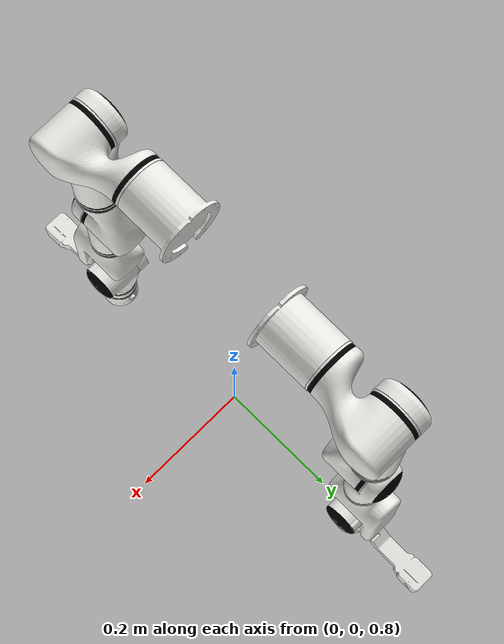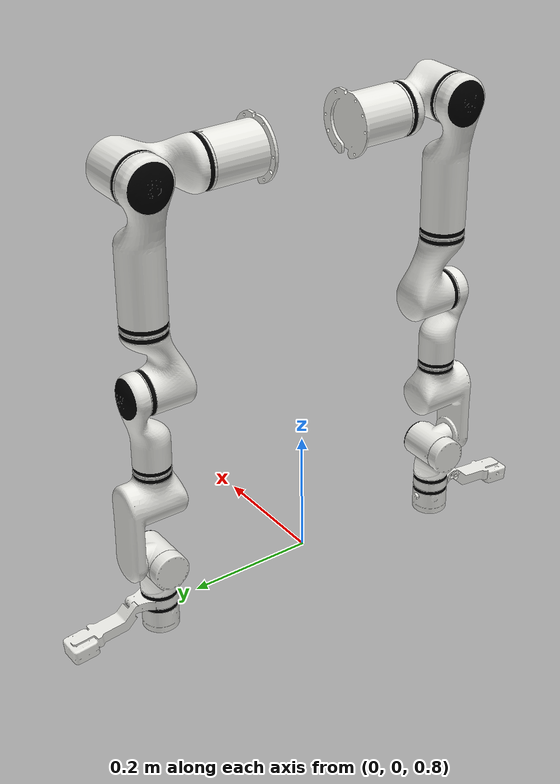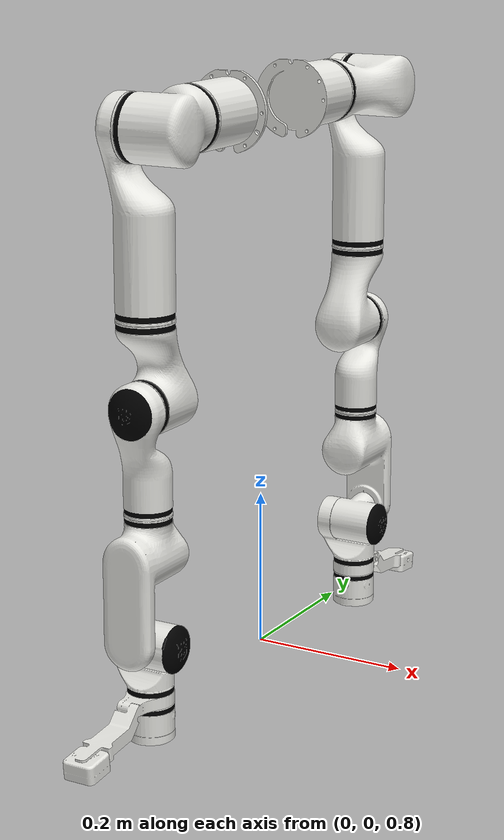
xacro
<?xml version='1.0' encoding='utf-8'?>
<robot name="rm_rx75_dual" xmlns:xacro="http://www.ros.org/wiki/xacro">
  <xacro:arg name="right_rpy" default="-1.5707963267949 -1.5707963267949 0" />
  <xacro:arg name="right_xyz" default="0 0.075 1.5" />
  <xacro:arg name="left_rpy" default="1.5707963267949 -1.5707963267949 0" />
  <xacro:arg name="left_xyz" default="0 -0.075 1.5" />
  <link name="base_root" />
  <joint name="left_base_mount" type="fixed">
    <origin rpy="$(arg left_rpy)" xyz="$(arg left_xyz)" />
    <parent link="base_root" />
    <child link="left_base_link" />
  </joint>
  <joint name="right_base_mount" type="fixed">
    <origin rpy="$(arg right_rpy)" xyz="$(arg right_xyz)" />
    <parent link="base_root" />
    <child link="right_base_link" />
  </joint>
  <link name="left_base_link">
    <inertial>
      <origin rpy="0 0 0" xyz="3.53515085052307E-05 -0.000344112995119898 0.0504743485121994" />
      <mass value="0.651913537431184" />
      <inertia ixx="0.000695985861740614" ixy="2.06881020271026E-06" ixz="2.11905962706535E-06" iyy="0.000681094463816854" iyz="-6.8398972367929E-06" izz="0.000727115124180861" />
    </inertial>
    <collision>
      <origin rpy="0 0 0" xyz="0 0 0" />
      <geometry>
        <mesh filename="package://rm_description/meshes/rm_rx75_arm/rm_rx75_left_arm_v/base_link.STL" />
      </geometry>
    </collision>
    <visual>
      <origin xyz="0 0 0" rpy="0 0 0" />
      <geometry>
        <mesh filename="package://rm_description/meshes/dae/rxl75/base_link.dae" />
      </geometry>
    </visual>
  </link>
  <link name="left_Link1">
    <inertial>
      <origin rpy="0 0 0" xyz="-0.488E-3 -13.727E-3 -10.765E-3" />
      <mass value="1.559" />
      <inertia ixx="2661.923E-6" ixy="-31.029E-6" ixz="9.34E-6" iyy="2302.513E-6" iyz="151.466E-6" izz="1676.59E-6" />
    </inertial>
    <collision>
      <origin rpy="0 0 0" xyz="0 0 0" />
      <geometry>
        <mesh filename="package://rm_description/meshes/rm_rx75_arm/rm_rx75_left_arm_v/Link1.STL" />
      </geometry>
    </collision>
    <visual>
      <origin xyz="0 0 0" rpy="0 0 0" />
      <geometry>
        <mesh filename="package://rm_description/meshes/dae/rxl75/Link1.dae" />
      </geometry>
    </visual>
  </link>
  <joint name="left_joint1" type="revolute">
    <origin rpy="0 0 0" xyz="0 0 0.191500058118611" />
    <parent link="left_base_link" />
    <child link="left_Link1" />
    <axis xyz="0 0 1" />
    <limit effort="60" lower="-3.0194" upper="3.0194" velocity="3.14" />
  </joint>
  <link name="left_Link2">
    <inertial>
      <origin rpy="0 0 0" xyz="-0.112E-3 -148.134E-3 4.111E-3" />
      <mass value="1.394" />
      <inertia ixx="6927.314E-6" ixy="0.302E-6" ixz="-2.679E-6" iyy="1045.02E-6" iyz="-801.141E-6" izz="6864.526E-6" />
    </inertial>
    <collision>
      <origin rpy="0 0 0" xyz="0 0 0" />
      <geometry>
        <mesh filename="package://rm_description/meshes/rm_rx75_arm/rm_rx75_left_arm_v/Link2.STL" />
      </geometry>
    </collision>
    <visual>
      <origin xyz="0 0 0" rpy="0 0 0" />
      <geometry>
        <mesh filename="package://rm_description/meshes/dae/rxl75/Link2.dae" />
      </geometry>
    </visual>
  </link>
  <joint name="left_joint2" type="revolute">
    <origin rpy="-1.57079632679489 -1.5707963267949 0" xyz="0 0 0" />
    <parent link="left_Link1" />
    <child link="left_Link2" />
    <axis xyz="0 0 1" />
    <limit effort="60" lower="-0.6109" upper="3.1067" velocity="3.14" />
  </joint>
  <link name="left_Link3">
    <inertial>
      <origin rpy="0 0 0" xyz="0.032E-3 15.649E-3 -11.225E-3" />
      <mass value="1.117" />
      <inertia ixx="1757.334E-6" ixy="0.706E-6" ixz="3.864E-6" iyy="1468.535E-6" iyz="-112.641E-6" izz="979.743E-6" />
    </inertial>
    <collision>
      <origin rpy="0 0 0" xyz="0 0 0" />
      <geometry>
        <mesh filename="package://rm_description/meshes/rm_rx75_arm/rm_rx75_left_arm_v/Link3.STL" />
      </geometry>
    </collision>
    <visual>
      <origin xyz="0 0 0" rpy="0 0 0" />
      <geometry>
        <mesh filename="package://rm_description/meshes/dae/rxl75/Link3.dae" />
      </geometry>
    </visual>
  </link>
  <joint name="left_joint3" type="revolute">
    <origin rpy="1.5707963267949 -1.5707963267949 0" xyz="0 -0.322 0" />
    <parent link="left_Link2" />
    <child link="left_Link3" />
    <axis xyz="0 0 1" />
    <limit effort="30" lower="-3.0194" upper="3.0194" velocity="3.925" />
  </joint>
  <link name="left_Link4">
    <inertial>
      <origin rpy="0 0 0" xyz="-0.001E-3 85.449E-3 4.844E-3" />
      <mass value="0.673" />
      <inertia ixx="1283.435E-6" ixy="-0.072E-6" ixz="0.003E-6" iyy="344.097E-6" iyz="229.828E-6" izz="1257.753E-6" />
    </inertial>
    <collision>
      <origin rpy="0 0 0" xyz="0 0 0" />
      <geometry>
        <mesh filename="package://rm_description/meshes/rm_rx75_arm/rm_rx75_left_arm_v/Link4.STL" />
      </geometry>
    </collision>
    <visual>
      <origin xyz="0 0 0" rpy="0 0 0" />
      <geometry>
        <mesh filename="package://rm_description/meshes/dae/rxl75/Link4.dae" />
      </geometry>
    </visual>
  </link>
  <joint name="left_joint4" type="revolute">
    <origin rpy="1.5707963267949 0 0" xyz="0 0 0" />
    <parent link="left_Link3" />
    <child link="left_Link4" />
    <axis xyz="0 0 1" />
    <limit effort="30" lower="-2.2689" upper="0.2618" velocity="3.925" />
  </joint>
  <link name="left_Link5">
    <inertial>
      <origin rpy="0 0 0" xyz="-0.001E-3 -14.741E-3 -80.627E-3" />
      <mass value="1.13" />
      <inertia ixx="2343.205E-6" ixy="0.074E-6" ixz="-0.026E-6" iyy="1934.356E-6" iyz="443.762E-6" izz="1091.781E-6" />
    </inertial>
    <collision>
      <origin rpy="0 0 0" xyz="0 0 0" />
      <geometry>
        <mesh filename="package://rm_description/meshes/rm_rx75_arm/rm_rx75_left_arm_v/Link5.STL" />
      </geometry>
    </collision>
    <visual>
      <origin xyz="0 0 0" rpy="0 0 0" />
      <geometry>
        <mesh filename="package://rm_description/meshes/dae/rxl75/Link5.dae" />
      </geometry>
    </visual>
  </link>
  <joint name="left_joint5" type="revolute">
    <origin rpy="-1.5707963267949 0 0" xyz="0 0.2755 0" />
    <parent link="left_Link4" />
    <child link="left_Link5" />
    <axis xyz="0 0 1" />
    <limit effort="10" lower="-3.0194" upper="3.0194" velocity="3.925" />
  </joint>
  <link name="left_Link6">
    <inertial>
      <origin rpy="0 0 0" xyz="13.909E-3 -1.02E-3 3.245E-3" />
      <mass value="0.559" />
      <inertia ixx="354.166E-6" ixy="0.248E-6" ixz="27.608E-6" iyy="288.125E-6" iyz="-0.694E-6" izz="312.482E-6" />
    </inertial>
    <collision>
      <origin rpy="0 0 0" xyz="0 0 0" />
      <geometry>
        <mesh filename="package://rm_description/meshes/rm_rx75_arm/rm_rx75_left_arm_v/Link6.STL" />
      </geometry>
    </collision>
    <visual>
      <origin xyz="0 0 0" rpy="0 0 0" />
      <geometry>
        <mesh filename="package://rm_description/meshes/dae/rxl75/Link6.dae" />
      </geometry>
    </visual>
  </link>
  <joint name="left_joint6" type="revolute">
    <origin rpy="1.57079632679489 -1.5707963267949 0" xyz="0 0 0" />
    <parent link="left_Link5" />
    <child link="left_Link6" />
    <axis xyz="0 0 1" />
    <limit effort="10" lower="-0.9599" upper="0.9599" velocity="3.925" />
  </joint>
  <link name="left_Link7">
    <inertial>
      <origin rpy="0 0 0" xyz="0.012883498052865615 -0.06802685939403529 0.00526417961581023" />
      <mass value="0.4048" />
      <inertia ixx="0.0005393349281932882" ixy="-0.0001227770843829096" ixz="-1.949420011133908E-05" iyy="0.000275709279620946" iyz="-8.925280487085298E-05" izz="0.0005558653531971319" />
    </inertial>
    <collision>
      <origin rpy="0 0 0" xyz="0 0 0" />
      <geometry>
        <mesh filename="package://rm_description/meshes/rm_rx75_arm/rm_rx75_left_arm_v/Link7.STL" />
      </geometry>
    </collision>
    <collision>
      <origin rpy="1.57079632679489 0 0" xyz="0 -0.119000004117148 0" />
      <geometry>
        <mesh filename="package://rm_description/meshes/rm_rx75_arm/rm_rx75_left_arm_v/Link8.STL" />
      </geometry>
    </collision>
    <visual>
      <origin xyz="0 0 0" rpy="0 0 0" />
      <geometry>
        <mesh filename="package://rm_description/meshes/dae/rxl75/Link7-6FB-V.dae" />
      </geometry>
    </visual>
  </link>
  <joint name="left_joint7" type="revolute">
    <origin rpy="1.5708 -1.5708 0" xyz="0.0155 0 0" />
    <parent link="left_Link6" />
    <child link="left_Link7" />
    <axis xyz="0 0 1" />
    <limit effort="10" lower="-1.9024" upper="0.6109" velocity="3.925" />
  </joint>
  <link name="left_tool0">
    <visual>
      <origin xyz="0 0 0" rpy="0 0 0" />
      <geometry>
        <mesh filename="package://rm_description/meshes/dae/rxl75/Link8.dae" />
      </geometry>
    </visual>
  </link>
  <joint name="left_tool0_fixed" type="fixed">
    <origin rpy="1.57079632679489 0 0" xyz="0 -0.119000004117148 0" />
    <parent link="left_Link7" />
    <child link="left_tool0" />
  </joint>
  <link name="right_base_link">
    <inertial>
      <origin rpy="0 0 0" xyz="0.000247231299312832 0.000107089054159907 0.0504743485122055" />
      <mass value="0.651913537431336" />
      <inertia ixx="0.000693039456720291" ixy="-3.66140304370255E-07" ixz="6.39371684073528E-06" iyy="0.000684040868837749" iyz="2.26157110424948E-06" izz="0.000727115124181002" />
    </inertial>
    <collision>
      <origin rpy="0 0 0" xyz="0 0 0" />
      <geometry>
        <mesh filename="package://rm_description/meshes/rm_rx75_arm/rm_rx75_right_arm_v/base_link.STL" />
      </geometry>
    </collision>
    <visual>
      <origin xyz="0 0 0" rpy="0 0 0" />
      <geometry>
        <mesh filename="package://rm_description/meshes/dae/rxr75/base_link.dae" />
      </geometry>
    </visual>
  </link>
  <link name="right_Link1">
    <inertial>
      <origin rpy="0 0 0" xyz="0.018E-3 -13.67E-3 -10.1E-3" />
      <mass value="1.559" />
      <inertia ixx="2693.824E-6" ixy="-0.293E-6" ixz="2.442E-6" iyy="2324.503E-6" iyz="193.031E-6" izz="1662.437E-6" />
    </inertial>
    <collision>
      <origin rpy="0 0 0" xyz="0 0 0" />
      <geometry>
        <mesh filename="package://rm_description/meshes/rm_rx75_arm/rm_rx75_right_arm_v/Link1.STL" />
      </geometry>
    </collision>
    <visual>
      <origin xyz="0 0 0" rpy="0 0 0" />
      <geometry>
        <mesh filename="package://rm_description/meshes/dae/rxr75/Link1.dae" />
      </geometry>
    </visual>
  </link>
  <joint name="right_joint1" type="revolute">
    <origin rpy="0 0 0" xyz="0 0 0.1915" />
    <parent link="right_base_link" />
    <child link="right_Link1" />
    <axis xyz="0 0 1" />
    <limit effort="60" lower="-3.0194" upper="3.0194" velocity="3.14" />
  </joint>
  <link name="right_Link2">
    <inertial>
      <origin rpy="0 0 0" xyz="-0.197E-3 -149.264E-3 -3.905E-3" />
      <mass value="1.384" />
      <inertia ixx="6726E-6" ixy="0" ixz="4E-6" iyy="1028E-6" iyz="750E-6" izz="6677E-6" />
    </inertial>
    <collision>
      <origin rpy="0 0 0" xyz="0 0 0" />
      <geometry>
        <mesh filename="package://rm_description/meshes/rm_rx75_arm/rm_rx75_right_arm_v/Link2.STL" />
      </geometry>
    </collision>
    <visual>
      <origin xyz="0 0 0" rpy="0 0 0" />
      <geometry>
        <mesh filename="package://rm_description/meshes/dae/rxr75/Link2.dae" />
      </geometry>
    </visual>
  </link>
  <joint name="right_joint2" type="revolute">
    <origin rpy="-1.5708 -1.5708 0" xyz="0 0 0" />
    <parent link="right_Link1" />
    <child link="right_Link2" />
    <axis xyz="0 0 1" />
    <limit effort="60" lower="-0.6109" upper="3.1067" velocity="3.14" />
  </joint>
  <link name="right_Link3">
    <inertial>
      <origin rpy="0 0 0" xyz="-0.154E-3 -15.652E-3 -11.241E-3" />
      <mass value="1.117" />
      <inertia ixx="1756.36E-6" ixy="-4.257E-6" ixz="-0.403E-6" iyy="1468.096E-6" iyz="112.003E-6" izz="980.233E-6" />
    </inertial>
    <collision>
      <origin rpy="0 0 0" xyz="0 0 0" />
      <geometry>
        <mesh filename="package://rm_description/meshes/rm_rx75_arm/rm_rx75_right_arm_v/Link3.STL" />
      </geometry>
    </collision>
    <visual>
      <origin xyz="0 0 0" rpy="0 0 0" />
      <geometry>
        <mesh filename="package://rm_description/meshes/dae/rxr75/Link3.dae" />
      </geometry>
    </visual>
  </link>
  <joint name="right_joint3" type="revolute">
    <origin rpy="1.5707963267949 1.5707963267949 0" xyz="0 -0.322 0" />
    <parent link="right_Link2" />
    <child link="right_Link3" />
    <axis xyz="0 0 1" />
    <limit effort="30" lower="-3.0194" upper="3.0194" velocity="3.925" />
  </joint>
  <link name="right_Link4">
    <inertial>
      <origin rpy="0 0 0" xyz="0 86.537E-3 -4.411E-6" />
      <mass value="0.665" />
      <inertia ixx="1209.416E-6" ixy="0.112E-6" ixz="0.007E-6" iyy="332.227E-6" iyz="-205.297E-6" izz="1191.661E-6" />
    </inertial>
    <collision>
      <origin rpy="0 0 0" xyz="0 0 0" />
      <geometry>
        <mesh filename="package://rm_description/meshes/rm_rx75_arm/rm_rx75_right_arm_v/Link4.STL" />
      </geometry>
    </collision>
    <visual>
      <origin xyz="0 0 0" rpy="0 0 0" />
      <geometry>
        <mesh filename="package://rm_description/meshes/dae/rxr75/Link4.dae" />
      </geometry>
    </visual>
  </link>
  <joint name="right_joint4" type="revolute">
    <origin rpy="1.5707963267949 0 0" xyz="0 0 0" />
    <parent link="right_Link3" />
    <child link="right_Link4" />
    <axis xyz="0 0 1" />
    <limit effort="30" lower="-2.2689" upper="0.2618" velocity="3.925" />
  </joint>
  <link name="right_Link5">
    <inertial>
      <origin rpy="0 0 0" xyz="0 14.739E-3 -80.627E-3" />
      <mass value="1.13" />
      <inertia ixx="2343.069E-6" ixy="0.048E-6" ixz="0.015E-6" iyy="1934.377E-6" iyz="-443.673E-6" izz="1091.67E-6" />
    </inertial>
    <collision>
      <origin rpy="0 0 0" xyz="0 0 0" />
      <geometry>
        <mesh filename="package://rm_description/meshes/rm_rx75_arm/rm_rx75_right_arm_v/Link5.STL" />
      </geometry>
    </collision>
    <visual>
      <origin xyz="0 0 0" rpy="0 0 0" />
      <geometry>
        <mesh filename="package://rm_description/meshes/dae/rxr75/Link5.dae" />
      </geometry>
    </visual>
  </link>
  <joint name="right_joint5" type="revolute">
    <origin rpy="-1.5707963267949 0 0" xyz="0 0.2755 0" />
    <parent link="right_Link4" />
    <child link="right_Link5" />
    <axis xyz="0 0 1" />
    <limit effort="10" lower="-3.0194" upper="3.0194" velocity="3.925" />
  </joint>
  <link name="right_Link6">
    <inertial>
      <origin rpy="0 0 0" xyz="13.908E-3 -1.017E-3 -3.245E-3" />
      <mass value="0.559" />
      <inertia ixx="354.168E-6" ixy="-0.391E-6" ixz="-27.069E-6" iyy="288.127E-6" iyz="0.742E-6" izz="312.487E-6" />
    </inertial>
    <collision>
      <origin rpy="0 0 0" xyz="0 0 0" />
      <geometry>
        <mesh filename="package://rm_description/meshes/rm_rx75_arm/rm_rx75_right_arm_v/Link6.STL" />
      </geometry>
    </collision>
    <visual>
      <origin xyz="0 0 0" rpy="0 0 0" />
      <geometry>
        <mesh filename="package://rm_description/meshes/dae/rxr75/Link6.dae" />
      </geometry>
    </visual>
  </link>
  <joint name="right_joint6" type="revolute">
    <origin rpy="1.5707963267949 -1.5707963267949 0" xyz="0 0 0" />
    <parent link="right_Link5" />
    <child link="right_Link6" />
    <axis xyz="0 0 1" />
    <limit effort="10" lower="-0.9599" upper="0.9599" velocity="3.925" />
  </joint>
  <link name="right_Link7">
    <inertial>
      <origin rpy="0 0 0" xyz="0.009919069110329167 0.06765824548889174 0.005247446369401909" />
      <mass value="0.395592830144305" />
      <inertia ixx="0.0005508313551283986" ixy="9.716722505344388E-05" ixz="-1.4995092763820632E-05" iyy="0.0002546219483334733" iyz="9.227801252615191E-05" izz="0.000547911950048062" />
    </inertial>
    <collision>
      <origin rpy="0 0 0" xyz="0 0 0" />
      <geometry>
        <mesh filename="package://rm_description/meshes/rm_rx75_arm/rm_rx75_right_arm_v/Link7.STL" />
      </geometry>
    </collision>
    <collision>
      <origin rpy="-1.5707963267949 0 0" xyz="0 0.119000004117148 0" />
      <geometry>
        <mesh filename="package://rm_description/meshes/rm_rx75_arm/rm_rx75_right_arm_v/Link8.STL" />
      </geometry>
    </collision>
    <visual>
      <origin xyz="0 0 0" rpy="0 0 0" />
      <geometry>
        <mesh filename="package://rm_description/meshes/dae/rxr75/Link7-6FB-V.dae" />
      </geometry>
    </visual>
  </link>
  <joint name="right_joint7" type="revolute">
    <origin rpy="1.5708 1.5708 0" xyz="0.0155 0 0" />
    <parent link="right_Link6" />
    <child link="right_Link7" />
    <axis xyz="0 0 1" />
    <limit effort="10" lower="-0.6109" upper="1.9024" velocity="3.925" />
  </joint>
  <link name="right_tool0">
    <visual>
      <origin xyz="0 0 0" rpy="0 0 0" />
      <geometry>
        <mesh filename="package://rm_description/meshes/dae/rxr75/Link8.dae" />
      </geometry>
    </visual>
  </link>
  <joint name="right_tool0_fixed" type="fixed">
    <origin rpy="-1.5707963267949 0 0" xyz="0 0.119000004117148 0" />
    <parent link="right_Link7" />
    <child link="right_tool0" />
  </joint>
</robot>
